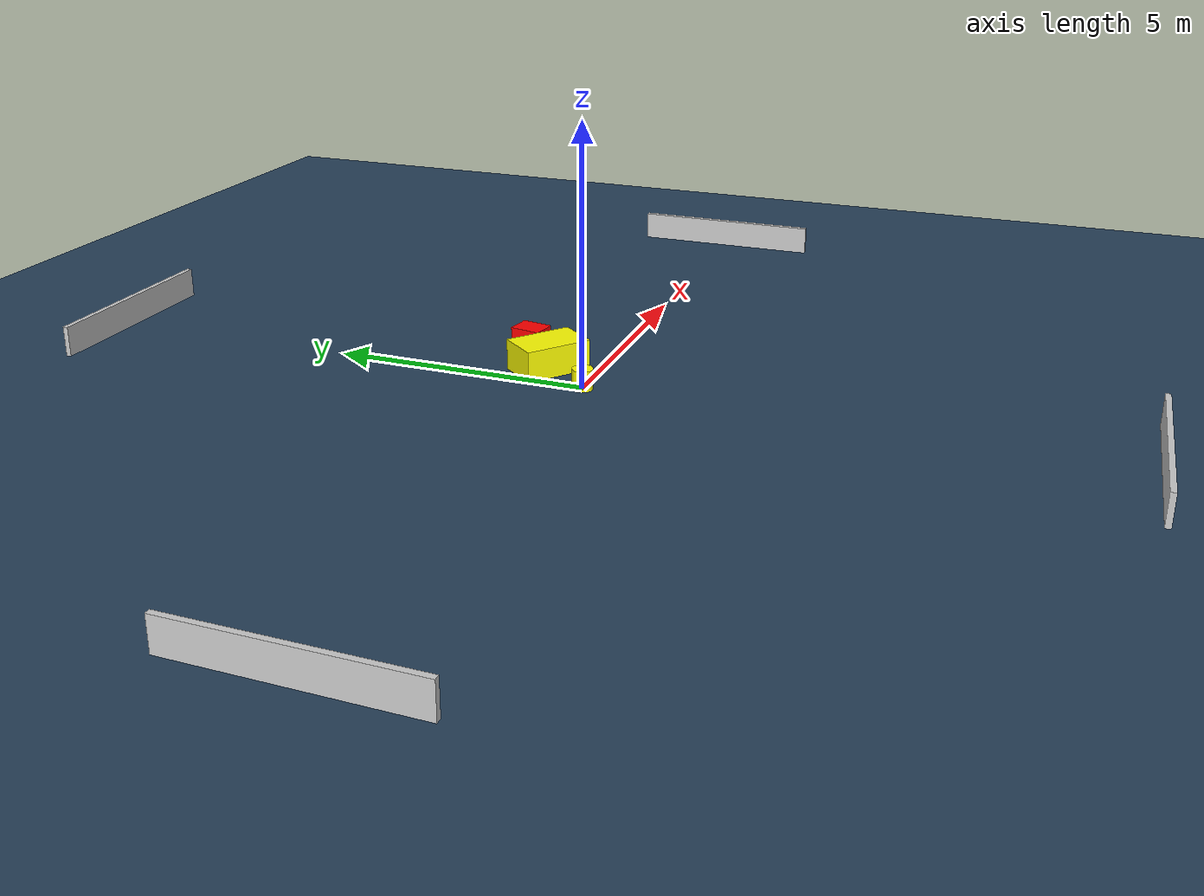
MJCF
<?xml version="1.0" ?>
<mujoco model="generated_environment">
  <option timestep="0.01" integrator="RK4" cone="elliptic"/>
  <default>
    <geom density="1"/>
  </default>
  <asset>
    <texture builtin="gradient" height="3072" name="skybox" rgb1="0.3 0.5 0.7" rgb2="0 0 0" type="skybox" width="512"/>
    <texture builtin="checker" height="300" name="groundplane" rgb1="0.2 0.3 0.4" rgb2="0.1 0.2 0.3" type="2d" width="300"/>
    <material name="groundplane" reflectance="0.2" texrepeat="5 5" texture="groundplane"/>
  </asset>
  <worldbody>
    <light dir="0 0 -1" directional="true" pos="0 0 1.5"/>
    <geom condim="3" friction="0.5 0.005 0.001" material="groundplane" name="floor" pos="0 0 0" size="0 0 0.05" type="plane"/>
    <body name="walls">
      <geom name="wall_1" condim="4" pos="-10.0 0.0 0.3" rgba="0.800000011920929 0.800000011920929 0.800000011920929 1.0" size="0.05 2.0 0.3" type="box"/>
      <geom name="wall_2" condim="4" pos="10.0 0.0 0.3" rgba="0.800000011920929 0.800000011920929 0.800000011920929 1.0" size="0.05 2.0 0.3" type="box"/>
      <geom name="wall_3" condim="4" pos="0.0 -10.0 0.3" rgba="0.800000011920929 0.800000011920929 0.800000011920929 1.0" size="2.0 0.05 0.3" type="box"/>
      <geom name="wall_4" condim="4" pos="0.0 10.0 0.3" rgba="0.800000011920929 0.800000011920929 0.800000011920929 1.0" size="2.0 0.05 0.3" type="box"/>
    </body>
    <body name="robot">
      <joint name="joint_x" type="slide" pos="0 0 0" axis="1 0 0"/>
      <joint name="joint_y" type="slide" pos="0 0 0" axis="0 1 0"/>
      <geom name="robot" type="cylinder" pos="0.0 0.0 0.2" size="0.2 0.2 0.0" mass="5.0" friction="1.0 0.005 0.0001" condim="4" rgba="1.0 1.0 0.0 1.0"/>
    </body>
    <body name="obstacle_1_movable">
      <geom name="obstacle_1_movable" condim="4" pos="0.6835430574984688 0.952496824925283 0.3" euler="0 0 321.6702642658134" friction="0.0 0.005 0.001" rgba="1.0 1.0 0.0 1.0" size="0.6667261046016326 0.42032040070445437 0.3" type="box" mass="0.1"/>
      <joint type="free"/>
    </body>
    <body name="obstacle_2_static">
      <geom name="obstacle_2_static" condim="4" pos="1.2427795104110344 1.5379902878620901 0.3" euler="0 0 80.05171670840954" friction="0.0 0.005 0.001" rgba="1.0 0.0 0.0 1.0" size="0.3044598768716298 0.2408301921657564 0.3" type="box"/>
    </body>
  </worldbody>
  <actuator>
    <motor name="actuator_x" joint="joint_x" gear="1" ctrlrange="-1 1"/>
    <motor name="actuator_y" joint="joint_y" gear="1" ctrlrange="-1 1"/>
  </actuator>
</mujoco>
